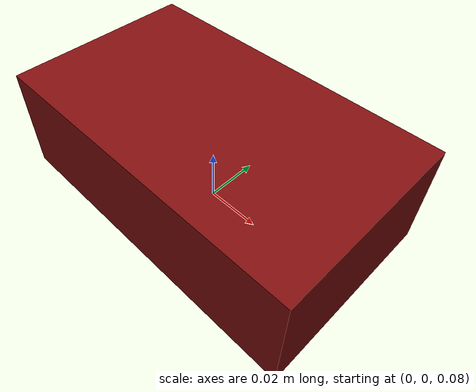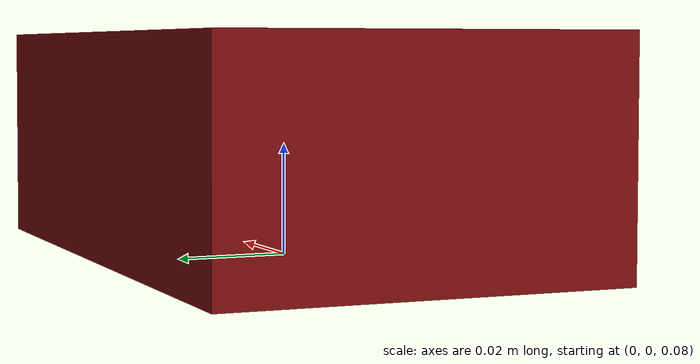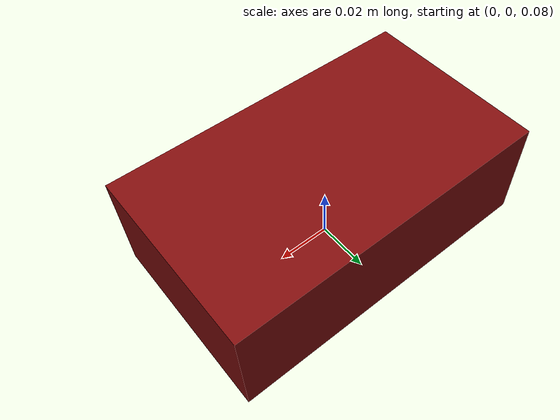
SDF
<?xml version="1.0" ?>
<sdf version="1.9">
  <model name="liver_organ">
    <pose>0 0 0.1 0 0 0</pose>
    <link name="liver_link">
      <inertial>
        <mass>1.5</mass>
        <inertia>
          <ixx>0.01</ixx><ixy>0</ixy><ixz>0</ixz>
          <iyy>0.01</iyy><iyz>0</iyz>
          <izz>0.01</izz>
        </inertia>
      </inertial>
      <collision name="liver_collision">
        <geometry>
          <mesh>
            <uri>file://../../meshes/liver.stl</uri>
            <scale>1 1 1</scale>
          </mesh>
        </geometry>
        <surface>
          <friction>
            <ode>
              <mu>1.2</mu>
              <mu2>1.2</mu2>
            </ode>
          </friction>
          <contact>
            <ode>
              <kp>100000</kp>
              <kd>100</kd>
              <max_vel>0.01</max_vel>
              <min_depth>0.001</min_depth>
            </ode>
          </contact>
        </surface>
      </collision>
      <visual name="liver_visual">
        <geometry>
          <mesh>
            <uri>file://../../meshes/liver.stl</uri>
            <scale>1 1 1</scale>
          </mesh>
        </geometry>
        <material>
          <ambient>0.6 0.1 0.1 1</ambient>
          <diffuse>0.5 0.05 0.05 1</diffuse>
          <specular>0.4 0.2 0.2 1</specular>
        </material>
      </visual>
    </link>
  </model>
</sdf>
